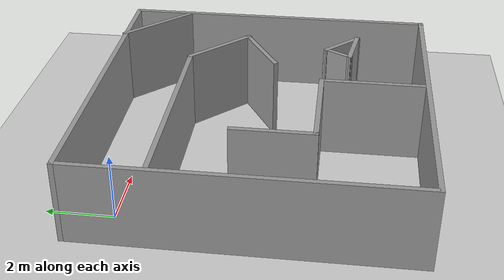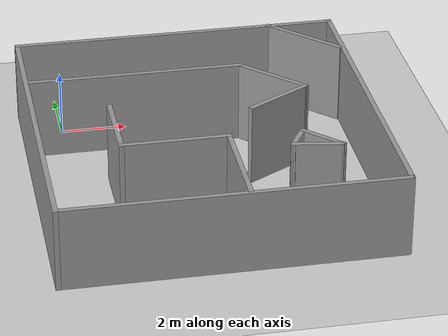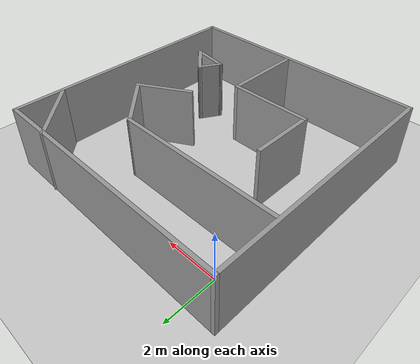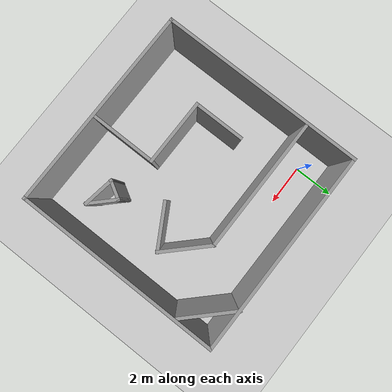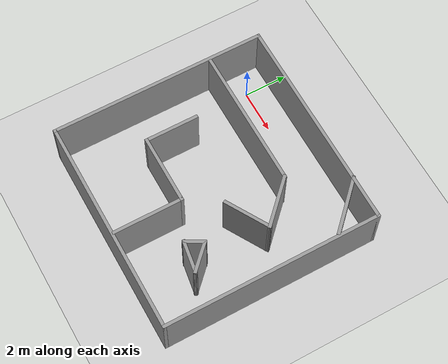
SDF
<?xml version="1.0" ?>
<sdf version="1.7">
  <world name="default">
    <!-- A global light source -->
    <include>
      <uri>model://sun</uri>
    </include>
    <!-- A ground plane -->
    <include>
      <uri>model://ground_plane</uri>
    </include>
    <!-- A Building -->
    <include>
      <uri>model://my_world</uri>
      <pose>3.768152 -3.724225 0 0 0 -1.572056</pose>
    </include>
  </world>
</sdf>

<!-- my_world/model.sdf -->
<sdf version='1.7'>
  <model name='my_world'>
    <pose>2.54779 1.525 0 0 -0 0</pose>
    <link name='Wall_0'>
      <collision name='Wall_0_Collision'>
        <geometry>
          <box>
            <size>10 0.15 2.5</size>
          </box>
        </geometry>
        <pose>0 0 1.25 0 -0 0</pose>
      </collision>
      <visual name='Wall_0_Visual'>
        <pose>0 0 1.25 0 -0 0</pose>
        <geometry>
          <box>
            <size>10 0.15 2.5</size>
          </box>
        </geometry>
        <material>
          <script>
            <uri>file://media/materials/scripts/gazebo.material</uri>
            <name>Gazebo/Grey</name>
          </script>
          <ambient>1 1 1 1</ambient>
        </material>
        <meta>
          <layer>0</layer>
        </meta>
      </visual>
      <pose>-4.89779 -0 0 0 -0 1.5708</pose>
    </link>
    <link name='Wall_1'>
      <collision name='Wall_1_Collision'>
        <geometry>
          <box>
            <size>10 0.15 2.5</size>
          </box>
        </geometry>
        <pose>0 0 1.25 0 -0 0</pose>
      </collision>
      <visual name='Wall_1_Visual'>
        <pose>0 0 1.25 0 -0 0</pose>
        <geometry>
          <box>
            <size>10 0.15 2.5</size>
          </box>
        </geometry>
        <material>
          <script>
            <uri>file://media/materials/scripts/gazebo.material</uri>
            <name>Gazebo/Grey</name>
          </script>
          <ambient>1 1 1 1</ambient>
        </material>
        <meta>
          <layer>0</layer>
        </meta>
      </visual>
      <pose>0.027207 4.925 0 0 -0 0</pose>
    </link>
    <link name='Wall_2'>
      <collision name='Wall_2_Collision'>
        <geometry>
          <box>
            <size>10 0.15 2.5</size>
          </box>
        </geometry>
        <pose>0 0 1.25 0 -0 0</pose>
      </collision>
      <visual name='Wall_2_Visual'>
        <pose>0 0 1.25 0 -0 0</pose>
        <geometry>
          <box>
            <size>10 0.15 2.5</size>
          </box>
        </geometry>
        <material>
          <script>
            <uri>file://media/materials/scripts/gazebo.material</uri>
            <name>Gazebo/Grey</name>
          </script>
          <ambient>1 1 1 1</ambient>
        </material>
        <meta>
          <layer>0</layer>
        </meta>
      </visual>
      <pose>4.95221 -0 0 0 -0 -1.5708</pose>
    </link>
    <link name='Wall_27'>
      <collision name='Wall_27_Collision'>
        <geometry>
          <box>
            <size>2.5 0.15 2.5</size>
          </box>
        </geometry>
        <pose>0 0 1.25 0 -0 0</pose>
      </collision>
      <visual name='Wall_27_Visual'>
        <pose>0 0 1.25 0 -0 0</pose>
        <geometry>
          <box>
            <size>2.5 0.15 2.5</size>
          </box>
        </geometry>
        <material>
          <script>
            <uri>file://media/materials/scripts/gazebo.material</uri>
            <name>Gazebo/Grey</name>
          </script>
          <ambient>1 1 1 1</ambient>
        </material>
        <meta>
          <layer>0</layer>
        </meta>
      </visual>
      <pose>-1.61647 2.39342 0 0 -0 0.785398</pose>
    </link>
    <link name='Wall_28'>
      <collision name='Wall_28_Collision'>
        <geometry>
          <box>
            <size>2.25 0.15 2.5</size>
          </box>
        </geometry>
        <pose>0 0 1.25 0 -0 0</pose>
      </collision>
      <visual name='Wall_28_Visual'>
        <pose>0 0 1.25 0 -0 0</pose>
        <geometry>
          <box>
            <size>2.25 0.15 2.5</size>
          </box>
        </geometry>
        <material>
          <script>
            <uri>file://media/materials/scripts/gazebo.material</uri>
            <name>Gazebo/Grey</name>
          </script>
          <ambient>1 1 1 1</ambient>
        </material>
        <meta>
          <layer>0</layer>
        </meta>
      </visual>
      <pose>-0.260622 2.31494 0 0 -0 -1.0472</pose>
    </link>
    <link name='Wall_3'>
      <collision name='Wall_3_Collision'>
        <geometry>
          <box>
            <size>10 0.15 2.5</size>
          </box>
        </geometry>
        <pose>0 0 1.25 0 -0 0</pose>
      </collision>
      <visual name='Wall_3_Visual'>
        <pose>0 0 1.25 0 -0 0</pose>
        <geometry>
          <box>
            <size>10 0.15 2.5</size>
          </box>
        </geometry>
        <material>
          <script>
            <uri>file://media/materials/scripts/gazebo.material</uri>
            <name>Gazebo/Grey</name>
          </script>
          <ambient>1 1 1 1</ambient>
        </material>
        <meta>
          <layer>0</layer>
        </meta>
      </visual>
      <pose>0.027207 -4.925 0 0 -0 3.14159</pose>
    </link>
    <link name='Wall_32'>
      <collision name='Wall_32_Collision'>
        <geometry>
          <box>
            <size>1.5 0.15 2.5</size>
          </box>
        </geometry>
        <pose>0 0 1.25 0 -0 0</pose>
      </collision>
      <visual name='Wall_32_Visual'>
        <pose>0 0 1.25 0 -0 0</pose>
        <geometry>
          <box>
            <size>1.5 0.15 2.5</size>
          </box>
        </geometry>
        <material>
          <script>
            <uri>file://media/materials/scripts/gazebo.material</uri>
            <name>Gazebo/Grey</name>
          </script>
          <ambient>1 1 1 1</ambient>
        </material>
        <meta>
          <layer>0</layer>
        </meta>
      </visual>
      <pose>2.31827 3.02692 0 0 -0 -2.35619</pose>
    </link>
    <link name='Wall_33'>
      <collision name='Wall_33_Collision'>
        <geometry>
          <box>
            <size>1 0.15 2.5</size>
          </box>
        </geometry>
        <pose>0 0 1.25 0 -0 0</pose>
      </collision>
      <visual name='Wall_33_Visual'>
        <pose>0 0 1.25 0 -0 0</pose>
        <geometry>
          <box>
            <size>1 0.15 2.5</size>
          </box>
        </geometry>
        <material>
          <script>
            <uri>file://media/materials/scripts/gazebo.material</uri>
            <name>Gazebo/Grey</name>
          </script>
          <ambient>1 1 1 1</ambient>
        </material>
        <meta>
          <layer>0</layer>
        </meta>
      </visual>
      <pose>2.20903 2.33712 0 0 -0 -0.523599</pose>
    </link>
    <link name='Wall_34'>
      <collision name='Wall_34_Collision'>
        <geometry>
          <box>
            <size>1.54679 0.15 2.5</size>
          </box>
        </geometry>
        <pose>0 0 1.25 0 -0 0</pose>
      </collision>
      <visual name='Wall_34_Visual'>
        <pose>0 0 1.25 0 -0 0</pose>
        <geometry>
          <box>
            <size>1.54679 0.15 2.5</size>
          </box>
        </geometry>
        <material>
          <script>
            <uri>file://media/materials/scripts/gazebo.material</uri>
            <name>Gazebo/Grey</name>
          </script>
          <ambient>1 1 1 1</ambient>
        </material>
        <meta>
          <layer>0</layer>
        </meta>
      </visual>
      <pose>2.68633 2.81441 0 0 -0 1.41374</pose>
    </link>
    <link name='Wall_36'>
      <collision name='Wall_36_Collision'>
        <geometry>
          <box>
            <size>3.25 0.15 2.5</size>
          </box>
        </geometry>
        <pose>0 0 1.25 0 -0 0</pose>
      </collision>
      <visual name='Wall_36_Visual'>
        <pose>0 0 1.25 0 -0 0</pose>
        <geometry>
          <box>
            <size>3.25 0.15 2.5</size>
          </box>
        </geometry>
        <material>
          <script>
            <uri>file://media/materials/scripts/gazebo.material</uri>
            <name>Gazebo/Grey</name>
          </script>
          <ambient>1 1 1 1</ambient>
        </material>
        <meta>
          <layer>0</layer>
        </meta>
      </visual>
      <pose>1.76977 -1.12316 0 0 -0 -1.5708</pose>
    </link>
    <link name='Wall_37'>
      <collision name='Wall_37_Collision'>
        <geometry>
          <box>
            <size>2.5 0.15 2.5</size>
          </box>
        </geometry>
        <pose>0 0 1.25 0 -0 0</pose>
      </collision>
      <visual name='Wall_37_Visual'>
        <pose>0 0 1.25 0 -0 0</pose>
        <geometry>
          <box>
            <size>2.5 0.15 2.5</size>
          </box>
        </geometry>
        <material>
          <script>
            <uri>file://media/materials/scripts/gazebo.material</uri>
            <name>Gazebo/Grey</name>
          </script>
          <ambient>1 1 1 1</ambient>
        </material>
        <meta>
          <layer>0</layer>
        </meta>
      </visual>
      <pose>0.594773 -2.67316 0 0 -0 3.14159</pose>
    </link>
    <link name='Wall_40'>
      <collision name='Wall_40_Collision'>
        <geometry>
          <box>
            <size>3.25 0.15 2.5</size>
          </box>
        </geometry>
        <pose>0 0 1.25 0 -0 0</pose>
      </collision>
      <visual name='Wall_40_Visual'>
        <pose>0 0 1.25 0 -0 0</pose>
        <geometry>
          <box>
            <size>3.25 0.15 2.5</size>
          </box>
        </geometry>
        <material>
          <script>
            <uri>file://media/materials/scripts/gazebo.material</uri>
            <name>Gazebo/Grey</name>
          </script>
          <ambient>1 1 1 1</ambient>
        </material>
        <meta>
          <layer>0</layer>
        </meta>
      </visual>
      <pose>3.31977 0.426836 0 0 -0 0</pose>
    </link>
    <link name='Wall_5'>
      <collision name='Wall_5_Collision'>
        <geometry>
          <box>
            <size>6.5 0.15 2.5</size>
          </box>
        </geometry>
        <pose>0 0 1.25 0 -0 0</pose>
      </collision>
      <visual name='Wall_5_Visual'>
        <pose>0 0 1.25 0 -0 0</pose>
        <geometry>
          <box>
            <size>6.5 0.15 2.5</size>
          </box>
        </geometry>
        <material>
          <script>
            <uri>file://media/materials/scripts/gazebo.material</uri>
            <name>Gazebo/Grey</name>
          </script>
          <ambient>1 1 1 1</ambient>
        </material>
        <meta>
          <layer>0</layer>
        </meta>
      </visual>
      <pose>-2.44732 -1.61243 0 0 -0 1.5708</pose>
    </link>
    <link name='Wall_7'>
      <collision name='Wall_7_Collision'>
        <geometry>
          <box>
            <size>2.75 0.15 2.5</size>
          </box>
        </geometry>
        <pose>0 0 1.25 0 -0 0</pose>
      </collision>
      <visual name='Wall_7_Visual'>
        <pose>0 0 1.25 0 -0 0</pose>
        <geometry>
          <box>
            <size>2.75 0.15 2.5</size>
          </box>
        </geometry>
        <material>
          <script>
            <uri>file://media/materials/scripts/gazebo.material</uri>
            <name>Gazebo/Grey</name>
          </script>
          <ambient>1 1 1 1</ambient>
        </material>
        <meta>
          <layer>0</layer>
        </meta>
      </visual>
      <pose>-4.0019 3.89906 0 0 -0 0.785398</pose>
    </link>
    <static>1</static>
  </model>
</sdf>
